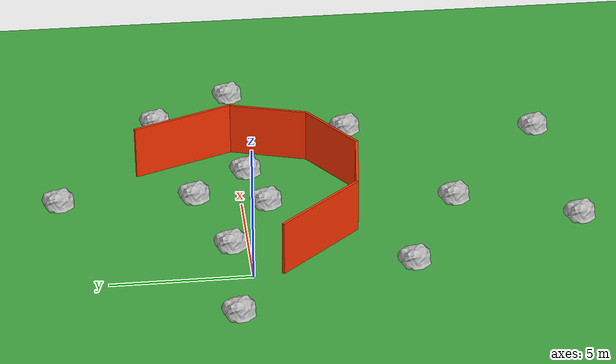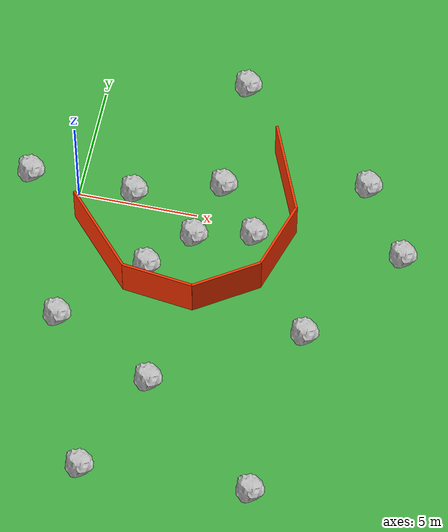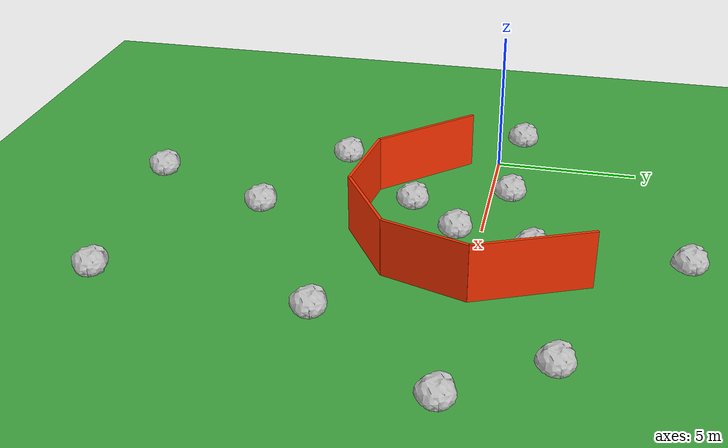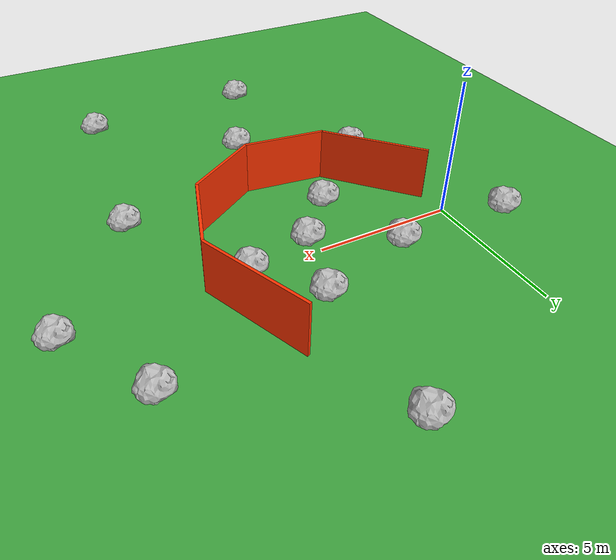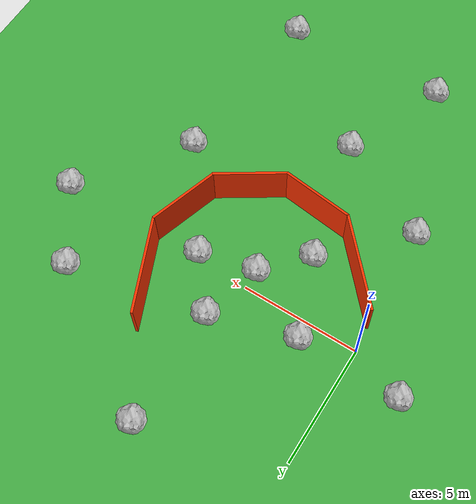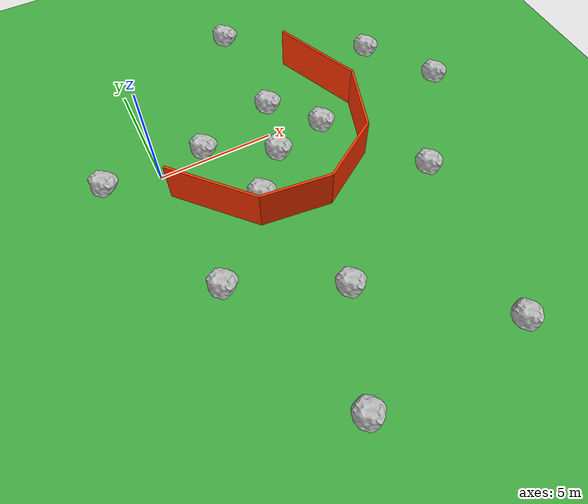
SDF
<?xml version="1.0" encoding="UTF-8"?>
<sdf version="1.9">
  <world name="leo_p6">
    <physics type="ode">
      <max_step_size>0.004</max_step_size>
      <real_time_factor>1.0</real_time_factor>
      <real_time_update_rate>250</real_time_update_rate>
    </physics>
    <gravity>0 0 -9.8</gravity>
    <magnetic_field>6e-06 2.3e-05 -4.2e-05</magnetic_field>
    <atmosphere type="adiabatic"/>
    <scene>
      <grid>false</grid>
      <ambient>0.4 0.4 0.4 1</ambient>
      <background>0.7 0.7 0.7 1</background>
      <shadows>true</shadows>
    </scene>
    <model name="ground_plane">
      <static>true</static>
      <link name="link">
        <collision name="collision">
          <geometry>
            <plane>
              <normal>0 0 1</normal>
              <size>1 1</size>
            </plane>
          </geometry>
          <surface>
            <friction>
              <ode/>
            </friction>
            <bounce/>
            <contact/>
          </surface>
        </collision>
        <visual name="visual">
          <geometry>
            <plane>
              <normal>0 0 1</normal>
              <size>500 500</size>
            </plane>
          </geometry>
          <material>
            <ambient>0.15 0.45 0.15 1</ambient>
            <diffuse>0.25 0.65 0.25 1</diffuse>
            <specular>0.05 0.05 0.05 1</specular>
          </material>
        </visual>
        <pose>0 0 0 0 -0 0</pose>
        <inertial>
          <pose>0 0 0 0 -0 0</pose>
          <mass>1</mass>
          <inertia>
            <ixx>1</ixx>
            <ixy>0</ixy>
            <ixz>0</ixz>
            <iyy>1</iyy>
            <iyz>0</iyz>
            <izz>1</izz>
          </inertia>
        </inertial>
        <enable_wind>false</enable_wind>
      </link>
      <pose>0 0 0 0 -0 0</pose>
      <self_collide>false</self_collide>
    </model>
    <light name="sunUTC" type="directional">
      <pose>0 0 500 0 -0 0</pose>
      <cast_shadows>true</cast_shadows>
      <intensity>1</intensity>
      <direction>0.001 0.625 -0.78</direction>
      <diffuse>0.904 0.904 0.904 1</diffuse>
      <specular>0.271 0.271 0.271 1</specular>
      <attenuation>
        <range>2000</range>
        <linear>0</linear>
        <constant>1</constant>
        <quadratic>0</quadratic>
      </attenuation>
      <spot>
        <inner_angle>0</inner_angle>
        <outer_angle>0</outer_angle>
        <falloff>0</falloff>
      </spot>
    </light>
    <spherical_coordinates>
      <surface_model>EARTH_WGS84</surface_model>
      <world_frame_orientation>ENU</world_frame_orientation>
      <latitude_deg>47.397971057728974</latitude_deg>
      <longitude_deg> 8.546163739800146</longitude_deg>
      <elevation>0</elevation>
    </spherical_coordinates>

    <!-- Rock 1 -->
    <model name="rock1">
      <static>true</static>
      <pose>2.21 0.65 0.1 0 0 0</pose>
      <link name="rock1_link">
        <visual name="visual">
          <geometry>
            <mesh>
              <uri>../models/Obstacles/FallingRock01.dae</uri>
              <scale>0.8 0.8 0.8</scale>
            </mesh>
          </geometry>
        </visual>
        <collision name="collision">
          <geometry>
            <mesh>
              <uri>../models/Obstacles/FallingRock01_Collider.dae</uri>
              <scale>0.8 0.8 0.8</scale>
            </mesh>
          </geometry>
        </collision>
      </link>
    </model>

    <!-- Rock 2 -->
    <model name="rock2">
      <static>true</static>
      <pose>5.79 1.71 0.1 0 0 0</pose>
      <link name="rock2_link">
        <visual name="visual">
          <geometry>
            <mesh>
              <uri>../models/Obstacles/FallingRock01.dae</uri>
              <scale>0.8 0.8 0.8</scale>
            </mesh>
          </geometry>
        </visual>
        <collision name="collision">
          <geometry>
            <mesh>
              <uri>../models/Obstacles/FallingRock01_Collider.dae</uri>
              <scale>0.8 0.8 0.8</scale>
            </mesh>
          </geometry>
        </collision>
      </link>
    </model>

    <!-- Rock 3 -->
    <model name="rock3">
      <static>true</static>
      <pose>3.47 -2.64 0.1 0 0 0</pose>
      <link name="rock3_link">
        <visual name="visual">
          <geometry>
            <mesh>
              <uri>../models/Obstacles/FallingRock01.dae</uri>
              <scale>0.8 0.8 0.8</scale>
            </mesh>
          </geometry>
        </visual>
        <collision name="collision">
          <geometry>
            <mesh>
              <uri>../models/Obstacles/FallingRock01_Collider.dae</uri>
              <scale>0.8 0.8 0.8</scale>
            </mesh>
          </geometry>
        </collision>
      </link>
    </model>

    <!-- Rock 4 -->
    <model name="rock4">
      <static>true</static>
      <pose>7.49 -0.33 0.1 0 0 0</pose>
      <link name="rock4_link">
        <visual name="visual">
          <geometry>
            <mesh>
              <uri>../models/Obstacles/FallingRock01.dae</uri>
              <scale>0.8 0.8 0.8</scale>
            </mesh>
          </geometry>
        </visual>
        <collision name="collision">
          <geometry>
            <mesh>
              <uri>../models/Obstacles/FallingRock01_Collider.dae</uri>
              <scale>0.8 0.8 0.8</scale>
            </mesh>
          </geometry>
        </collision>
      </link>
    </model>

    <!-- Rock 5 -->
    <model name="rock5">
      <static>true</static>
      <pose>5.08 -0.89 0.1 0 0 0</pose>
      <link name="rock5_link">
        <visual name="visual">
          <geometry>
            <mesh>
              <uri>../models/Obstacles/FallingRock01.dae</uri>
              <scale>0.8 0.8 0.8</scale>
            </mesh>
          </geometry>
        </visual>
        <collision name="collision">
          <geometry>
            <mesh>
              <uri>../models/Obstacles/FallingRock01_Collider.dae</uri>
              <scale>0.8 0.8 0.8</scale>
            </mesh>
          </geometry>
        </collision>
      </link>
    </model>

    <!-- Rock 6 -->
    <model name="rock6">
      <static>true</static>
      <pose>0.42 -5.69 0.1 0 0 0</pose>
      <link name="rock6_link">
        <visual name="visual">
          <geometry>
            <mesh>
              <uri>../models/Obstacles/FallingRock01.dae</uri>
              <scale>0.8 0.8 0.8</scale>
            </mesh>
          </geometry>
        </visual>
        <collision name="collision">
          <geometry>
            <mesh>
              <uri>../models/Obstacles/FallingRock01_Collider.dae</uri>
              <scale>0.8 0.8 0.8</scale>
            </mesh>
          </geometry>
        </collision>
      </link>
    </model>

    <!-- Rock 7 -->
    <model name="rock7">
      <static>true</static>
      <pose>4.7 -7.83 0.1 0 0 0</pose>
      <link name="rock7_link">
        <visual name="visual">
          <geometry>
            <mesh>
              <uri>../models/Obstacles/FallingRock01.dae</uri>
              <scale>0.8 0.8 0.8</scale>
            </mesh>
          </geometry>
        </visual>
        <collision name="collision">
          <geometry>
            <mesh>
              <uri>../models/Obstacles/FallingRock01_Collider.dae</uri>
              <scale>0.8 0.8 0.8</scale>
            </mesh>
          </geometry>
        </collision>
      </link>
    </model>

    <!-- Rock 8 -->
    <model name="rock8">
      <static>true</static>
      <pose>2.88 -12.16 0.1 0 0 0</pose>
      <link name="rock8_link">
        <visual name="visual">
          <geometry>
            <mesh>
              <uri>../models/Obstacles/FallingRock01.dae</uri>
              <scale>0.8 0.8 0.8</scale>
            </mesh>
          </geometry>
        </visual>
        <collision name="collision">
          <geometry>
            <mesh>
              <uri>../models/Obstacles/FallingRock01_Collider.dae</uri>
              <scale>0.8 0.8 0.8</scale>
            </mesh>
          </geometry>
        </collision>
      </link>
    </model>

    <!-- Rock 9 -->
    <model name="rock9">
      <static>true</static>
      <pose>9.72 -11.83 0.1 0 0 0</pose>
      <link name="rock9_link">
        <visual name="visual">
          <geometry>
            <mesh>
              <uri>../models/Obstacles/FallingRock01.dae</uri>
              <scale>0.8 0.8 0.8</scale>
            </mesh>
          </geometry>
        </visual>
        <collision name="collision">
          <geometry>
            <mesh>
              <uri>../models/Obstacles/FallingRock01_Collider.dae</uri>
              <scale>0.8 0.8 0.8</scale>
            </mesh>
          </geometry>
        </collision>
      </link>
    </model>

    <!-- Rock 10 -->
    <model name="rock10">
      <static>true</static>
      <pose>10.45 -4.48 0.1 0 0 0</pose>
      <link name="rock10_link">
        <visual name="visual">
          <geometry>
            <mesh>
              <uri>../models/Obstacles/FallingRock01.dae</uri>
              <scale>0.8 0.8 0.8</scale>
            </mesh>
          </geometry>
        </visual>
        <collision name="collision">
          <geometry>
            <mesh>
              <uri>../models/Obstacles/FallingRock01_Collider.dae</uri>
              <scale>0.8 0.8 0.8</scale>
            </mesh>
          </geometry>
        </collision>
      </link>
    </model>

    <!-- Rock 11 -->
    <model name="rock11">
      <static>true</static>
      <pose>13.69 -0.11 0.1 0 0 0</pose>
      <link name="rock11_link">
        <visual name="visual">
          <geometry>
            <mesh>
              <uri>../models/Obstacles/FallingRock01.dae</uri>
              <scale>0.8 0.8 0.8</scale>
            </mesh>
          </geometry>
        </visual>
        <collision name="collision">
          <geometry>
            <mesh>
              <uri>../models/Obstacles/FallingRock01_Collider.dae</uri>
              <scale>0.8 0.8 0.8</scale>
            </mesh>
          </geometry>
        </collision>
      </link>
    </model>

    <!-- Rock 12 -->
    <model name="rock12">
      <static>true</static>
      <pose>11.69 2.89 0.1 0 0 0</pose>
      <link name="rock12_link">
        <visual name="visual">
          <geometry>
            <mesh>
              <uri>../models/Obstacles/FallingRock01.dae</uri>
              <scale>0.8 0.8 0.8</scale>
            </mesh>
          </geometry>
        </visual>
        <collision name="collision">
          <geometry>
            <mesh>
              <uri>../models/Obstacles/FallingRock01_Collider.dae</uri>
              <scale>0.8 0.8 0.8</scale>
            </mesh>
          </geometry>
        </collision>
      </link>
    </model>

    <!-- Rock 13 -->
    <model name="rock13">
      <static>true</static>
      <pose>5.79 6.71 0.1 0 0 0</pose>
      <link name="rock13_link">
        <visual name="visual">
          <geometry>
            <mesh>
              <uri>../models/Obstacles/FallingRock01.dae</uri>
              <scale>0.8 0.8 0.8</scale>
            </mesh>
          </geometry>
        </visual>
        <collision name="collision">
          <geometry>
            <mesh>
              <uri>../models/Obstacles/FallingRock01_Collider.dae</uri>
              <scale>0.8 0.8 0.8</scale>
            </mesh>
          </geometry>
        </collision>
      </link>
    </model>

    <!-- Rock 14 -->
    <model name="rock14">
      <static>true</static>
      <pose>-2.21 0.71 0.1 0 0 0</pose>
      <link name="rock14_link">
        <visual name="visual">
          <geometry>
            <mesh>
              <uri>../models/Obstacles/FallingRock01.dae</uri>
              <scale>0.8 0.8 0.8</scale>
            </mesh>
          </geometry>
        </visual>
        <collision name="collision">
          <geometry>
            <mesh>
              <uri>../models/Obstacles/FallingRock01_Collider.dae</uri>
              <scale>0.8 0.8 0.8</scale>
            </mesh>
          </geometry>
        </collision>
      </link>
    </model>

    <!-- U-shaped obstacle -->
    <model name="walls">
      <static>true</static>
      <pose>6 -2 0 0 0 -1</pose>
      <link name="wall_1">
        <pose>-2.02 4.1 1 0 0 1.4</pose>
        <collision name="collision">
          <geometry>
            <box>
              <size>0.1 4 2</size>
            </box>
          </geometry>
        </collision>
        <visual name="visual">
          <geometry>
            <box>
              <size>0.1 4 2</size>
            </box>
          </geometry>
          <material>
            <ambient>1 0.2 0 1</ambient>
            <diffuse>1 0.2 0 1</diffuse>
          </material>
        </visual>
      </link>
      <link name="wall_2">
        <pose>0.88 2.62 1 0 0 -2.45</pose>
        <collision name="collision">
          <geometry>
            <box>
              <size>0.1 3 2</size>
            </box>
          </geometry>
        </collision>
        <visual name="visual">
          <geometry>
            <box>
              <size>0.1 3 2</size>
            </box>
          </geometry>
          <material>
            <ambient>1 0.2 0 1</ambient>
            <diffuse>1 0.2 0 1</diffuse>
          </material>
        </visual>
      </link>
      <link name="wall_3">
        <pose>1.83 0 1 0 0 0</pose>
        <collision name="collision">
          <geometry>
            <box>
              <size>0.1 3 2</size>
            </box>
          </geometry>
        </collision>
        <visual name="visual">
          <geometry>
            <box>
              <size>0.1 3 2</size>
            </box>
          </geometry>
          <material>
            <ambient>1 0.2 0 1</ambient>
            <diffuse>1 0.2 0 1</diffuse>
          </material>
        </visual>
      </link>
      <link name="wall_4">
        <pose>-2.02 -4.1 1 0 0 -1.4</pose>
        <collision name="collision">
          <geometry>
            <box>
              <size>0.1 4 2</size>
            </box>
          </geometry>
        </collision>
        <visual name="visual">
          <geometry>
            <box>
              <size>0.1 4 2</size>
            </box>
          </geometry>
          <material>
            <ambient>1 0.2 0 1</ambient>
            <diffuse>1 0.2 0 1</diffuse>
          </material>
        </visual>
      </link>
      <link name="wall_5">
        <pose>0.88 -2.62 1 0 0 2.45</pose>
        <collision name="collision">
          <geometry>
            <box>
              <size>0.1 3 2</size>
            </box>
          </geometry>
        </collision>
        <visual name="visual">
          <geometry>
            <box>
              <size>0.1 3 2</size>
            </box>
          </geometry>
          <material>
            <ambient>1 0.2 0 1</ambient>
            <diffuse>1 0.2 0 1</diffuse>
          </material>
        </visual>
      </link>
    </model>
  </world>
</sdf>
